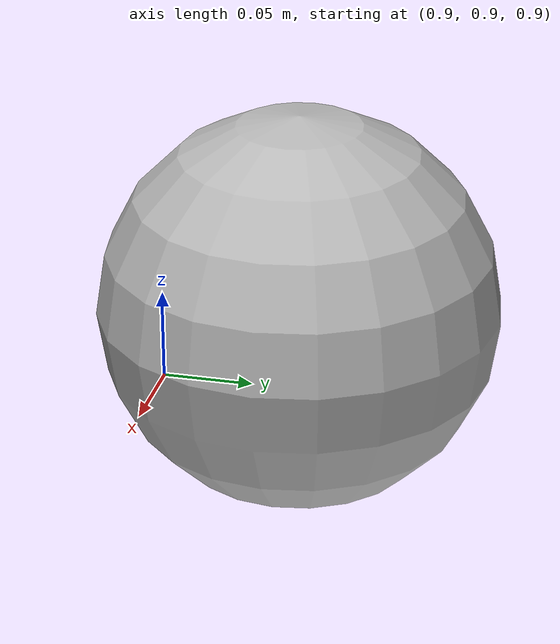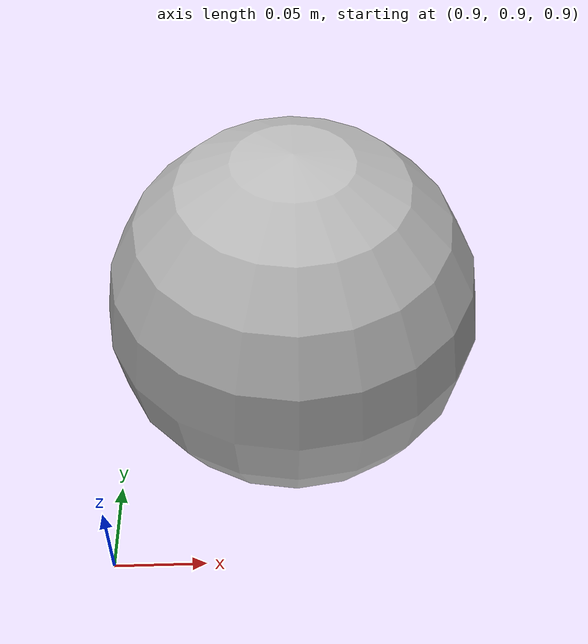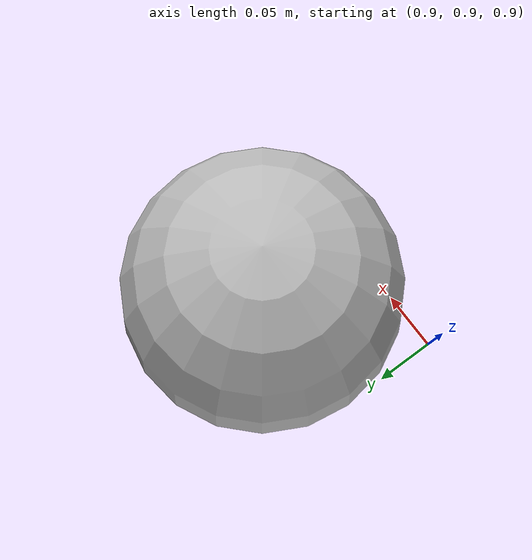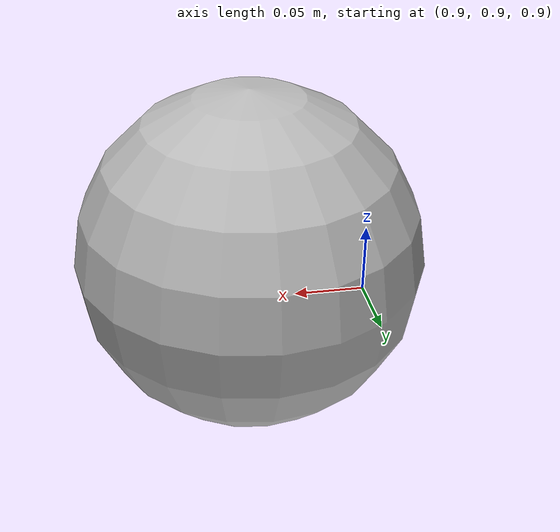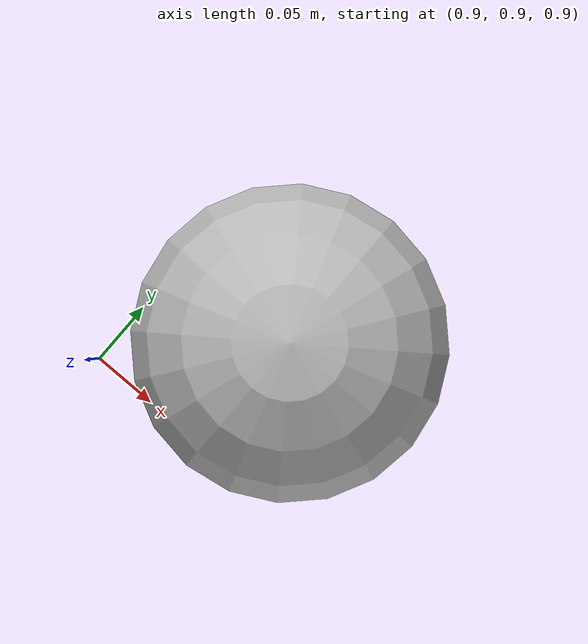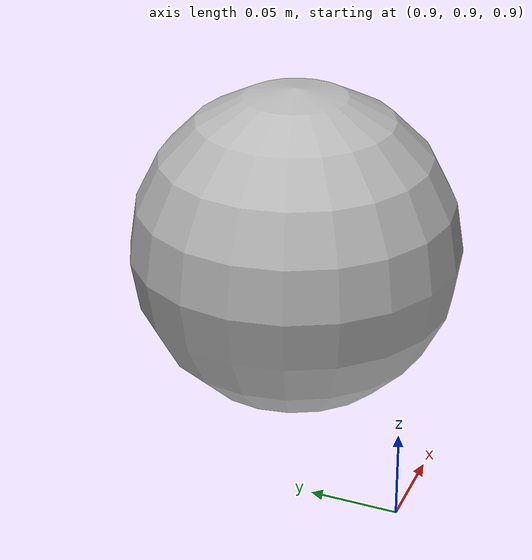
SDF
<?xml version='1.0'?>
<sdf version='1.8'>
  <world name='default'>
    <model name='ParentModel'>
      <frame name='ChildModel::__model__' attached_to='ChildModel::L1'>
        <pose relative_to='__model__'>1 0 1 0 -0 0</pose>
      </frame>
      <link name='ChildModel::L1'>
        <pose relative_to='ChildModel::__model__'>0 1 0 0 -0 0</pose>
        <visual name='v1'>
          <geometry>
            <sphere>
              <radius>0.1</radius>
            </sphere>
          </geometry>
        </visual>
      </link>
      <link name='ChildModel::L2'>
        <pose relative_to='ChildModel::__model__'>0 0 0 0 -0 0</pose>
      </link>
      <joint name='ChildModel::J1' type='revolute'>
        <parent>ChildModel::L1</parent>
        <child>ChildModel::L2</child>
      </joint>
    </model>
    <gravity>0 0 -9.8</gravity>
    <magnetic_field>6e-06 2.3e-05 -4.2e-05</magnetic_field>
    <atmosphere type='adiabatic'/>
    <physics type='ode'>
      <max_step_size>0.001</max_step_size>
      <real_time_factor>1</real_time_factor>
      <real_time_update_rate>1000</real_time_update_rate>
    </physics>
    <scene>
      <ambient>0.4 0.4 0.4 1</ambient>
      <background>0.7 0.7 0.7 1</background>
      <shadows>1</shadows>
    </scene>
  </world>
</sdf>
